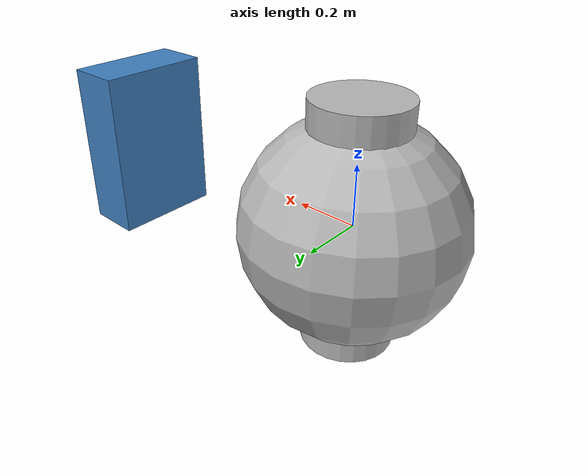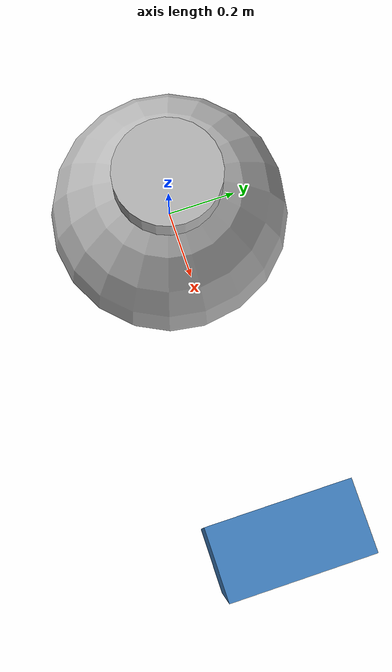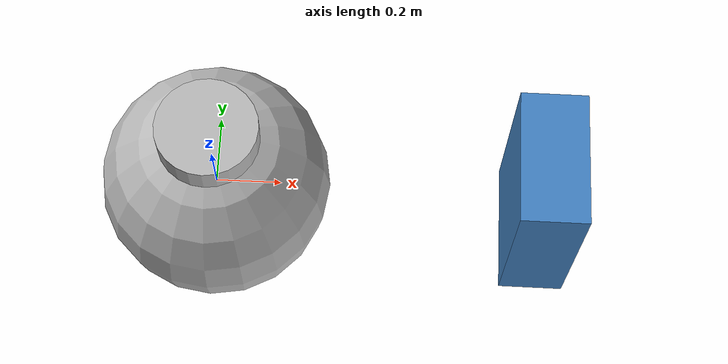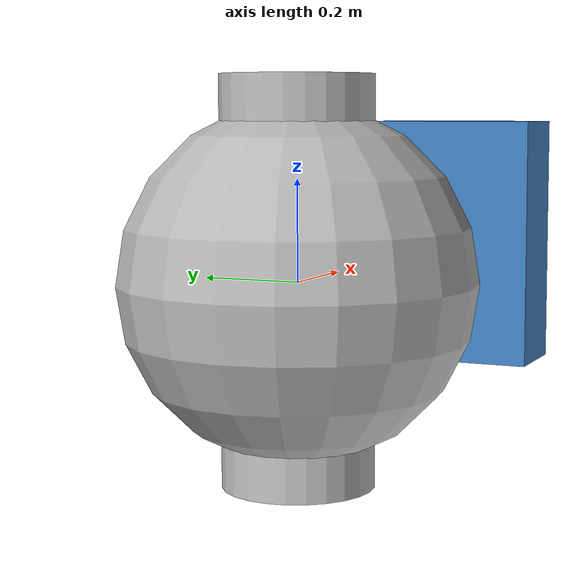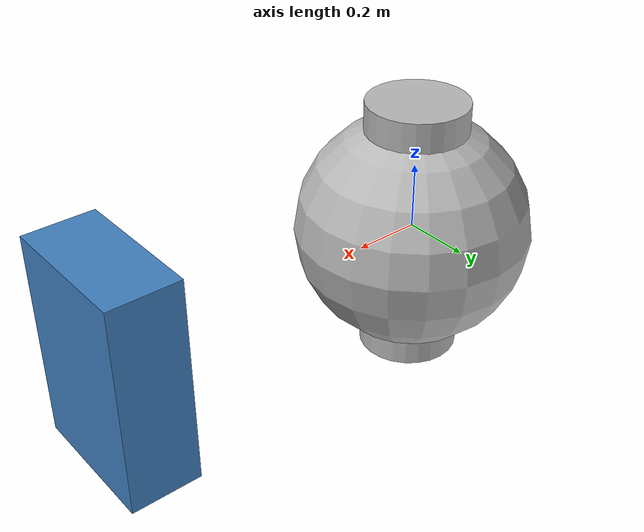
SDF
<?xml version="1.0" ?>
<sdf version="1.6">
  <model name="simple_shapes">
    <static>1</static>
    <link name="link">
      <inertial>
        <pose frame="">0.1 0.2 0.3 0 0 0</pose>
        <mass>2.5</mass>
        <inertia>
          <ixx>0.4</ixx>
          <ixy>0.0</ixy>
          <ixz>0.0</ixz>
          <iyy>0.5</iyy>
          <iyz>0.0</iyz>
          <izz>0.6</izz>
        </inertia>
      </inertial>
      <visual name="box_visual">
        <pose frame="">1 0 0 0 0 0</pose>
        <geometry>
          <box>
            <size>0.2 0.4 0.6</size>
          </box>
        </geometry>
        <material>
          <diffuse>0.25 0.5 0.75 1.0</diffuse>
        </material>
        <meta>
          <layer>1</layer>
        </meta>
      </visual>
      <visual name="cylinder_visual">
        <geometry>
          <cylinder>
            <radius>0.15</radius>
            <length>0.8</length>
          </cylinder>
        </geometry>
      </visual>
      <visual name="sphere_visual">
        <geometry>
          <sphere>
            <radius>0.35</radius>
          </sphere>
        </geometry>
      </visual>
      <collision name="box_collision">
        <geometry>
          <box>
            <size>0.2 0.4 0.6</size>
          </box>
        </geometry>
        <surface>
          <friction>
            <ode>
              <mu>0.9</mu>
            </ode>
          </friction>
        </surface>
      </collision>
      <sensor name="ignored_sensor" type="camera"/>
    </link>
  </model>
</sdf>
